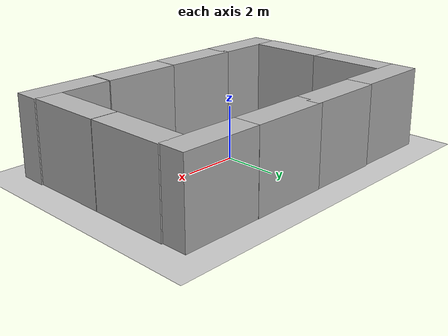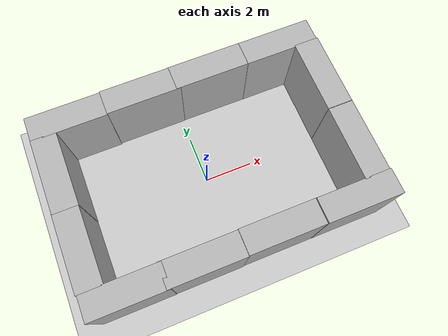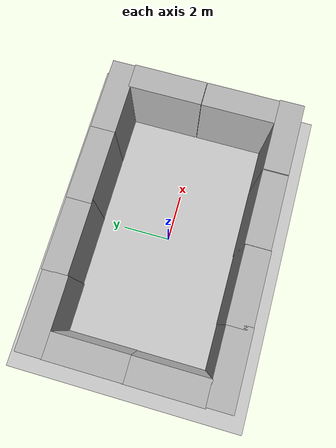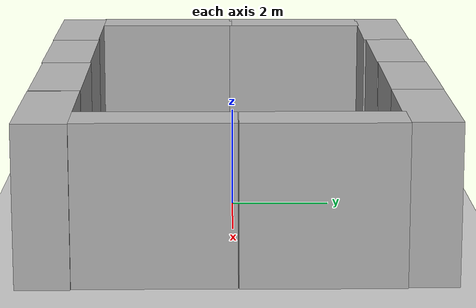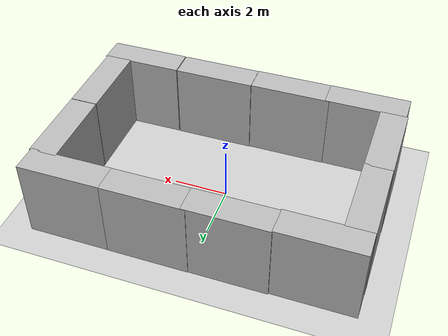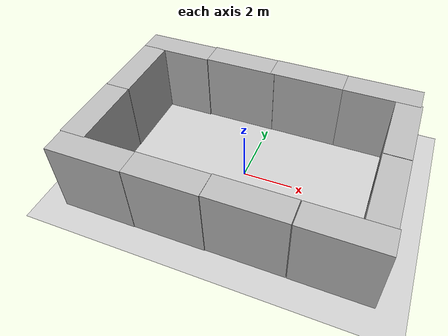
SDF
<sdf version="1.7">
 <world name="default">
  <light name="sun" type="directional">
   <pose>0 0 10 0 -0 0</pose>
   <diffuse>0.8 0.8 0.8 1</diffuse>
   <specular>0.2 0.2 0.2 1</specular>
   <attenuation>
    <range>1000</range>
    <constant>0.9</constant>
    <linear>0.01</linear>
    <quadratic>0.001</quadratic>
   </attenuation>
   <direction>-0.5 0.1 -0.9</direction>
   <spot><inner_angle>0</inner_angle><outer_angle>0</outer_angle><falloff>0</falloff></spot>
  </light>
  <model name="ground_plane">
   <static>1</static>
   <link name="link">
    <collision name="collision">
     <geometry><plane><normal>0 0 1</normal><size>100 100</size></plane></geometry>
     <surface>
      <contact><collide_bitmask>65535</collide_bitmask></contact>
      <friction><ode><mu>100</mu><mu2>50</mu2></ode></friction>
     </surface>
    </collision>
    <visual name="visual">
     <cast_shadows>0</cast_shadows>
     <geometry><plane><normal>0 0 1</normal><size>100 100</size></plane></geometry>
     <material>
      <script><uri>file://media/materials/scripts/gazebo.material</uri><name>Gazebo/Grey</name></script>
     </material>
    </visual>
   </link>
  </model>
  <gravity>0 0 -9.8</gravity>
  <magnetic_field>6e-06 2.3e-05 -4.2e-05</magnetic_field>
  <atmosphere type="adiabatic"/>
  <physics type="ode">
   <max_step_size>0.001</max_step_size>
   <real_time_factor>1</real_time_factor>
   <real_time_update_rate>1000</real_time_update_rate>
  </physics>
  <scene><ambient>0.4 0.4 0.4 1</ambient><background>0.7 0.7 0.7 1</background><shadows>1</shadows></scene>
  <spherical_coordinates>
   <surface_model>EARTH_WGS84</surface_model>
   <latitude_deg>0</latitude_deg>
   <longitude_deg>0</longitude_deg>
   <elevation>0</elevation>
   <heading_deg>0</heading_deg>
  </spherical_coordinates>
  <model name="brick_box_3x1x3">
   <static>1</static>
   <link name="chassis">
    <pose>0 0 1.5 0 -0 0</pose>
    <collision name="collision"><geometry><box><size>3 1 3</size></box></geometry></collision>
    <visual name="visual">
     <geometry><mesh><uri>model://brick_box_3x1x3/meshes/simple_box.dae</uri><scale>3 1 3</scale></mesh></geometry>
     <material>
      <script>
       <uri>model://brick_box_3x1x3/materials/scripts</uri>
       <uri>model://brick_box_3x1x3/materials/textures</uri>
       <name>BrickBox/Diffuse</name>
      </script>
     </material>
    </visual>
   </link>
   <pose>1.52081 -3.39897 0 0 -0 0</pose>
  </model>
  <model name="brick_box_3x1x3_0">
   <static>1</static>
   <link name="chassis">
    <pose>0 0 1.5 0 -0 0</pose>
    <collision name="collision"><geometry><box><size>3 1 3</size></box></geometry></collision>
    <visual name="visual">
     <geometry><mesh><uri>model://brick_box_3x1x3/meshes/simple_box.dae</uri><scale>3 1 3</scale></mesh></geometry>
     <material>
      <script>
       <uri>model://brick_box_3x1x3/materials/scripts</uri>
       <uri>model://brick_box_3x1x3/materials/textures</uri>
       <name>BrickBox/Diffuse</name>
      </script>
     </material>
    </visual>
   </link>
   <pose>1.45665 3.50205 0 0 -0 0</pose>
  </model>
  <model name="brick_box_3x1x3_1">
   <static>1</static>
   <link name="chassis">
    <pose>0 0 1.5 0 -0 0</pose>
    <collision name="collision"><geometry><box><size>3 1 3</size></box></geometry></collision>
    <visual name="visual">
     <geometry><mesh><uri>model://brick_box_3x1x3/meshes/simple_box.dae</uri><scale>3 1 3</scale></mesh></geometry>
     <material>
      <script>
       <uri>model://brick_box_3x1x3/materials/scripts</uri>
       <uri>model://brick_box_3x1x3/materials/textures</uri>
       <name>BrickBox/Diffuse</name>
      </script>
     </material>
    </visual>
   </link>
   <pose>-1.37044 3.48815 0 0 -0 0</pose>
  </model>
  <model name="brick_box_3x1x3_2">
   <static>1</static>
   <link name="chassis">
    <pose>0 0 1.5 0 -0 0</pose>
    <collision name="collision"><geometry><box><size>3 1 3</size></box></geometry></collision>
    <visual name="visual">
     <geometry><mesh><uri>model://brick_box_3x1x3/meshes/simple_box.dae</uri><scale>3 1 3</scale></mesh></geometry>
     <material>
      <script>
       <uri>model://brick_box_3x1x3/materials/scripts</uri>
       <uri>model://brick_box_3x1x3/materials/textures</uri>
       <name>BrickBox/Diffuse</name>
      </script>
     </material>
    </visual>
   </link>
   <pose>-1.48476 -3.42208 0 0 -0 0</pose>
  </model>
  <model name="brick_box_3x1x3_3">
   <static>1</static>
   <link name="chassis">
    <pose>0 0 1.5 0 -0 0</pose>
    <collision name="collision"><geometry><box><size>3 1 3</size></box></geometry></collision>
    <visual name="visual">
     <geometry><mesh><uri>model://brick_box_3x1x3/meshes/simple_box.dae</uri><scale>3 1 3</scale></mesh></geometry>
     <material>
      <script>
       <uri>model://brick_box_3x1x3/materials/scripts</uri>
       <uri>model://brick_box_3x1x3/materials/textures</uri>
       <name>BrickBox/Diffuse</name>
      </script>
     </material>
    </visual>
   </link>
   <pose>-4.32862 -3.4352 0 0 -0 0</pose>
  </model>
  <model name="brick_box_3x1x3_4">
   <static>1</static>
   <link name="chassis">
    <pose>0 0 1.5 0 -0 0</pose>
    <collision name="collision"><geometry><box><size>3 1 3</size></box></geometry></collision>
    <visual name="visual">
     <geometry><mesh><uri>model://brick_box_3x1x3/meshes/simple_box.dae</uri><scale>3 1 3</scale></mesh></geometry>
     <material>
      <script>
       <uri>model://brick_box_3x1x3/materials/scripts</uri>
       <uri>model://brick_box_3x1x3/materials/textures</uri>
       <name>BrickBox/Diffuse</name>
      </script>
     </material>
    </visual>
   </link>
   <pose>-4.35257 3.44636 0 0 -0 0</pose>
  </model>
  <model name="brick_box_3x1x3_5">
   <static>1</static>
   <link name="chassis">
    <pose>0 0 1.5 0 -0 0</pose>
    <collision name="collision"><geometry><box><size>3 1 3</size></box></geometry></collision>
    <visual name="visual">
     <geometry><mesh><uri>model://brick_box_3x1x3/meshes/simple_box.dae</uri><scale>3 1 3</scale></mesh></geometry>
     <material>
      <script>
       <uri>model://brick_box_3x1x3/materials/scripts</uri>
       <uri>model://brick_box_3x1x3/materials/textures</uri>
       <name>BrickBox/Diffuse</name>
      </script>
     </material>
    </visual>
   </link>
   <pose>-5.37676 -1.46455 0 0 -0 1.57</pose>
  </model>
  <model name="brick_box_3x1x3_5_clone">
   <static>1</static>
   <link name="chassis">
    <pose>0 0 1.5 0 -0 0</pose>
    <collision name="collision"><geometry><box><size>3 1 3</size></box></geometry></collision>
    <visual name="visual">
     <geometry><mesh><uri>model://brick_box_3x1x3/meshes/simple_box.dae</uri><scale>3 1 3</scale></mesh></geometry>
     <material>
      <script>
       <uri>model://brick_box_3x1x3/materials/scripts</uri>
       <uri>model://brick_box_3x1x3/materials/textures</uri>
       <name>BrickBox/Diffuse</name>
      </script>
     </material>
    </visual>
   </link>
   <pose>-5.36471 1.48167 0 0 -0 1.57</pose>
  </model>
  <model name="brick_box_3x1x3_6">
   <static>1</static>
   <link name="chassis">
    <pose>0 0 1.5 0 -0 0</pose>
    <collision name="collision"><geometry><box><size>3 1 3</size></box></geometry></collision>
    <visual name="visual">
     <geometry><mesh><uri>model://brick_box_3x1x3/meshes/simple_box.dae</uri><scale>3 1 3</scale></mesh></geometry>
     <material>
      <script>
       <uri>model://brick_box_3x1x3/materials/scripts</uri>
       <uri>model://brick_box_3x1x3/materials/textures</uri>
       <name>BrickBox/Diffuse</name>
      </script>
     </material>
    </visual>
   </link>
   <pose>4.55212 -3.40433 0 0 -0 0</pose>
  </model>
  <model name="brick_box_3x1x3_7">
   <static>1</static>
   <link name="chassis">
    <pose>0 0 1.5 0 -0 0</pose>
    <collision name="collision"><geometry><box><size>3 1 3</size></box></geometry></collision>
    <visual name="visual">
     <geometry><mesh><uri>model://brick_box_3x1x3/meshes/simple_box.dae</uri><scale>3 1 3</scale></mesh></geometry>
     <material>
      <script>
       <uri>model://brick_box_3x1x3/materials/scripts</uri>
       <uri>model://brick_box_3x1x3/materials/textures</uri>
       <name>BrickBox/Diffuse</name>
      </script>
     </material>
    </visual>
   </link>
   <pose>4.45684 3.49752 0 0 -0 0</pose>
  </model>
  <model name="brick_box_3x1x3_8">
   <static>1</static>
   <link name="chassis">
    <pose>0 0 1.5 0 -0 0</pose>
    <collision name="collision"><geometry><box><size>3 1 3</size></box></geometry></collision>
    <visual name="visual">
     <geometry><mesh><uri>model://brick_box_3x1x3/meshes/simple_box.dae</uri><scale>3 1 3</scale></mesh></geometry>
     <material>
      <script>
       <uri>model://brick_box_3x1x3/materials/scripts</uri>
       <uri>model://brick_box_3x1x3/materials/textures</uri>
       <name>BrickBox/Diffuse</name>
      </script>
     </material>
    </visual>
   </link>
   <pose>5.50502 -1.44668 0 0 -0 1.57</pose>
  </model>
  <model name="brick_box_3x1x3_9">
   <static>1</static>
   <link name="chassis">
    <pose>0 0 1.5 0 -0 0</pose>
    <collision name="collision"><geometry><box><size>3 1 3</size></box></geometry></collision>
    <visual name="visual">
     <geometry><mesh><uri>model://brick_box_3x1x3/meshes/simple_box.dae</uri><scale>3 1 3</scale></mesh></geometry>
     <material>
      <script>
       <uri>model://brick_box_3x1x3/materials/scripts</uri>
       <uri>model://brick_box_3x1x3/materials/textures</uri>
       <name>BrickBox/Diffuse</name>
      </script>
     </material>
    </visual>
   </link>
   <pose>5.50702 1.56976 0 0 -0 1.57</pose>
  </model>
 </world>
</sdf>
